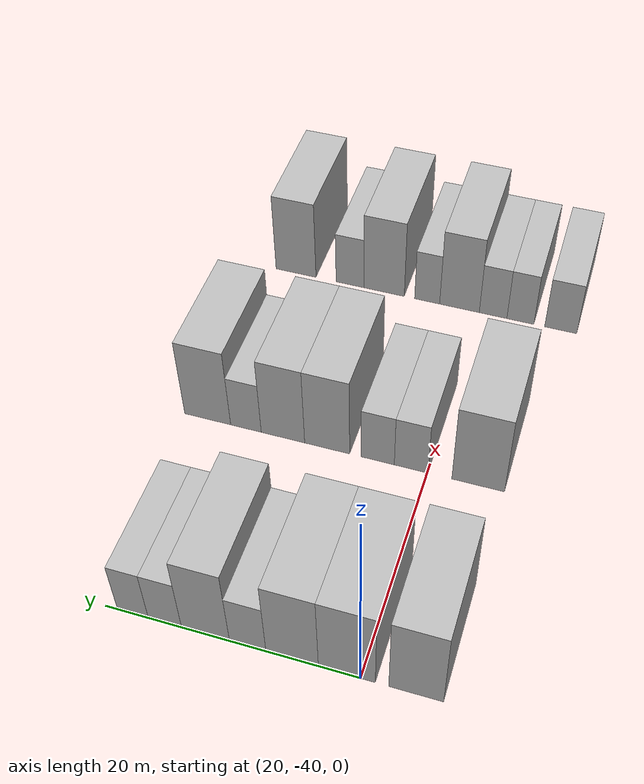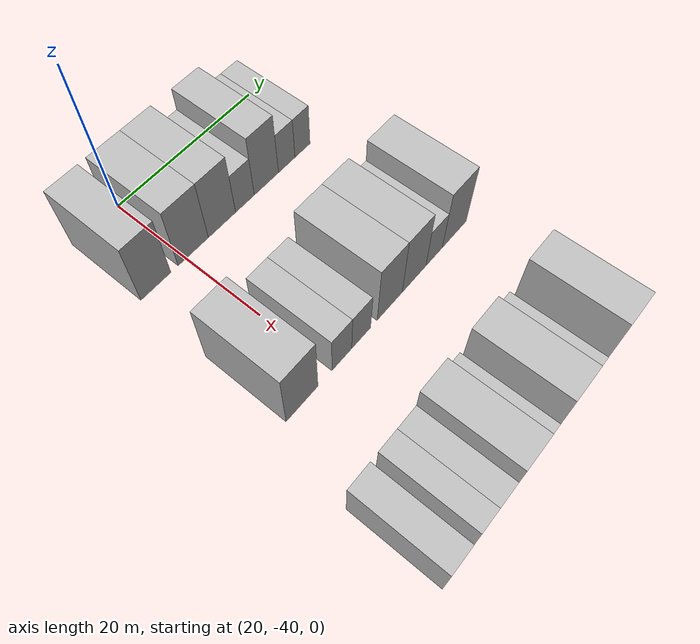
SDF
<sdf version="1.6">
 <world name="default">
  <model name="building_45">
   <static>1</static>
   <pose>25.0000 -44.1306 0 0.000000 0.000000 0.000000</pose>
   <link name="link">
    <pose>0 0 4.50 0 0 0</pose>
    <collision name="collision"><geometry><box><size>10.0000 4.0522 9.0000</size></box></geometry></collision>
    <visual name="visual">
     <cast_shadows>0</cast_shadows>
     <geometry><box><size>10.0000 4.0522 9.0000</size></box></geometry>
     <material>
      <script>
       <uri>model://HANNAS_wall/materials/scripts</uri>
       <uri>model://HANNAS_wall/materials/textures</uri>
       <name>vrc/HANNAS_wall</name>
      </script>
     </material>
    </visual>
   </link>
  </model>
  <model name="building_46">
   <static>1</static>
   <pose>25.0000 -38.9556 0 0.000000 0.000000 0.000000</pose>
   <link name="link">
    <pose>0 0 4.50 0 0 0</pose>
    <collision name="collision"><geometry><box><size>10.0000 4.2977 9.0000</size></box></geometry></collision>
    <visual name="visual">
     <cast_shadows>0</cast_shadows>
     <geometry><box><size>10.0000 4.2977 9.0000</size></box></geometry>
     <material>
      <script>
       <uri>model://HANNAS_wall/materials/scripts</uri>
       <uri>model://HANNAS_wall/materials/textures</uri>
       <name>vrc/HANNAS_wall</name>
      </script>
     </material>
    </visual>
   </link>
  </model>
  <model name="building_47">
   <static>1</static>
   <pose>25.0000 -34.7910 0 0.000000 0.000000 0.000000</pose>
   <link name="link">
    <pose>0 0 4.50 0 0 0</pose>
    <collision name="collision"><geometry><box><size>10.0000 4.0316 9.0000</size></box></geometry></collision>
    <visual name="visual">
     <cast_shadows>0</cast_shadows>
     <geometry><box><size>10.0000 4.0316 9.0000</size></box></geometry>
     <material>
      <script>
       <uri>model://HANNAS_wall/materials/scripts</uri>
       <uri>model://HANNAS_wall/materials/textures</uri>
       <name>vrc/HANNAS_wall</name>
      </script>
     </material>
    </visual>
   </link>
  </model>
  <model name="building_48">
   <static>1</static>
   <pose>25.0000 -31.3547 0 0.000000 0.000000 0.000000</pose>
   <link name="link">
    <pose>0 0 3.00 0 0 0</pose>
    <collision name="collision"><geometry><box><size>10.0000 2.8410 6.0000</size></box></geometry></collision>
    <visual name="visual">
     <cast_shadows>0</cast_shadows>
     <geometry><box><size>10.0000 2.8410 6.0000</size></box></geometry>
     <material>
      <script>
       <uri>model://HANNAS_wall/materials/scripts</uri>
       <uri>model://HANNAS_wall/materials/textures</uri>
       <name>vrc/HANNAS_wall</name>
      </script>
     </material>
    </visual>
   </link>
  </model>
  <model name="building_49">
   <static>1</static>
   <pose>25.0000 -28.0334 0 0.000000 0.000000 0.000000</pose>
   <link name="link">
    <pose>0 0 4.50 0 0 0</pose>
    <collision name="collision"><geometry><box><size>10.0000 3.8015 9.0000</size></box></geometry></collision>
    <visual name="visual">
     <cast_shadows>0</cast_shadows>
     <geometry><box><size>10.0000 3.8015 9.0000</size></box></geometry>
     <material>
      <script>
       <uri>model://HANNAS_wall/materials/scripts</uri>
       <uri>model://HANNAS_wall/materials/textures</uri>
       <name>vrc/HANNAS_wall</name>
      </script>
     </material>
    </visual>
   </link>
  </model>
  <model name="building_50">
   <static>1</static>
   <pose>25.0000 -24.7990 0 0.000000 0.000000 0.000000</pose>
   <link name="link">
    <pose>0 0 3.00 0 0 0</pose>
    <collision name="collision"><geometry><box><size>10.0000 2.6674 6.0000</size></box></geometry></collision>
    <visual name="visual">
     <cast_shadows>0</cast_shadows>
     <geometry><box><size>10.0000 2.6674 6.0000</size></box></geometry>
     <material>
      <script>
       <uri>model://HANNAS_wall/materials/scripts</uri>
       <uri>model://HANNAS_wall/materials/textures</uri>
       <name>vrc/HANNAS_wall</name>
      </script>
     </material>
    </visual>
   </link>
  </model>
  <model name="building_51">
   <static>1</static>
   <pose>25.0000 -22.2155 0 0.000000 0.000000 0.000000</pose>
   <link name="link">
    <pose>0 0 3.00 0 0 0</pose>
    <collision name="collision"><geometry><box><size>10.0000 2.4995 6.0000</size></box></geometry></collision>
    <visual name="visual">
     <cast_shadows>0</cast_shadows>
     <geometry><box><size>10.0000 2.4995 6.0000</size></box></geometry>
     <material>
      <script>
       <uri>model://HANNAS_wall/materials/scripts</uri>
       <uri>model://HANNAS_wall/materials/textures</uri>
       <name>vrc/HANNAS_wall</name>
      </script>
     </material>
    </visual>
   </link>
  </model>
  <model name="building_166">
   <static>1</static>
   <pose>44.0000 -44.2271 0 0.000000 0.000000 0.000000</pose>
   <link name="link">
    <pose>0 0 4.50 0 0 0</pose>
    <collision name="collision"><geometry><box><size>10.0000 4.3986 9.0000</size></box></geometry></collision>
    <visual name="visual">
     <cast_shadows>0</cast_shadows>
     <geometry><box><size>10.0000 4.3986 9.0000</size></box></geometry>
     <material>
      <script>
       <uri>model://HANNAS_wall/materials/scripts</uri>
       <uri>model://HANNAS_wall/materials/textures</uri>
       <name>vrc/HANNAS_wall</name>
      </script>
     </material>
    </visual>
   </link>
  </model>
  <model name="building_167">
   <static>1</static>
   <pose>44.0000 -38.5871 0 0.000000 0.000000 0.000000</pose>
   <link name="link">
    <pose>0 0 3.00 0 0 0</pose>
    <collision name="collision"><geometry><box><size>10.0000 2.8814 6.0000</size></box></geometry></collision>
    <visual name="visual">
     <cast_shadows>0</cast_shadows>
     <geometry><box><size>10.0000 2.8814 6.0000</size></box></geometry>
     <material>
      <script>
       <uri>model://HANNAS_wall/materials/scripts</uri>
       <uri>model://HANNAS_wall/materials/textures</uri>
       <name>vrc/HANNAS_wall</name>
      </script>
     </material>
    </visual>
   </link>
  </model>
  <model name="building_168">
   <static>1</static>
   <pose>44.0000 -35.7199 0 0.000000 0.000000 0.000000</pose>
   <link name="link">
    <pose>0 0 3.00 0 0 0</pose>
    <collision name="collision"><geometry><box><size>10.0000 2.8529 6.0000</size></box></geometry></collision>
    <visual name="visual">
     <cast_shadows>0</cast_shadows>
     <geometry><box><size>10.0000 2.8529 6.0000</size></box></geometry>
     <material>
      <script>
       <uri>model://HANNAS_wall/materials/scripts</uri>
       <uri>model://HANNAS_wall/materials/textures</uri>
       <name>vrc/HANNAS_wall</name>
      </script>
     </material>
    </visual>
   </link>
  </model>
  <model name="building_169">
   <static>1</static>
   <pose>44.0000 -31.3206 0 0.000000 0.000000 0.000000</pose>
   <link name="link">
    <pose>0 0 4.50 0 0 0</pose>
    <collision name="collision"><geometry><box><size>10.0000 3.9457 9.0000</size></box></geometry></collision>
    <visual name="visual">
     <cast_shadows>0</cast_shadows>
     <geometry><box><size>10.0000 3.9457 9.0000</size></box></geometry>
     <material>
      <script>
       <uri>model://HANNAS_wall/materials/scripts</uri>
       <uri>model://HANNAS_wall/materials/textures</uri>
       <name>vrc/HANNAS_wall</name>
      </script>
     </material>
    </visual>
   </link>
  </model>
  <model name="building_170">
   <static>1</static>
   <pose>44.0000 -27.4151 0 0.000000 0.000000 0.000000</pose>
   <link name="link">
    <pose>0 0 4.50 0 0 0</pose>
    <collision name="collision"><geometry><box><size>10.0000 3.8653 9.0000</size></box></geometry></collision>
    <visual name="visual">
     <cast_shadows>0</cast_shadows>
     <geometry><box><size>10.0000 3.8653 9.0000</size></box></geometry>
     <material>
      <script>
       <uri>model://HANNAS_wall/materials/scripts</uri>
       <uri>model://HANNAS_wall/materials/textures</uri>
       <name>vrc/HANNAS_wall</name>
      </script>
     </material>
    </visual>
   </link>
  </model>
  <model name="building_171">
   <static>1</static>
   <pose>44.0000 -24.1025 0 0.000000 0.000000 0.000000</pose>
   <link name="link">
    <pose>0 0 3.00 0 0 0</pose>
    <collision name="collision"><geometry><box><size>10.0000 2.7599 6.0000</size></box></geometry></collision>
    <visual name="visual">
     <cast_shadows>0</cast_shadows>
     <geometry><box><size>10.0000 2.7599 6.0000</size></box></geometry>
     <material>
      <script>
       <uri>model://HANNAS_wall/materials/scripts</uri>
       <uri>model://HANNAS_wall/materials/textures</uri>
       <name>vrc/HANNAS_wall</name>
      </script>
     </material>
    </visual>
   </link>
  </model>
  <model name="building_172">
   <static>1</static>
   <pose>44.0000 -20.6267 0 0.000000 0.000000 0.000000</pose>
   <link name="link">
    <pose>0 0 4.50 0 0 0</pose>
    <collision name="collision"><geometry><box><size>10.0000 4.1917 9.0000</size></box></geometry></collision>
    <visual name="visual">
     <cast_shadows>0</cast_shadows>
     <geometry><box><size>10.0000 4.1917 9.0000</size></box></geometry>
     <material>
      <script>
       <uri>model://HANNAS_wall/materials/scripts</uri>
       <uri>model://HANNAS_wall/materials/textures</uri>
       <name>vrc/HANNAS_wall</name>
      </script>
     </material>
    </visual>
   </link>
  </model>
  <model name="building_285">
   <static>1</static>
   <pose>63.0000 -47.4978 0 0.000000 0.000000 0.000000</pose>
   <link name="link">
    <pose>0 0 3.00 0 0 0</pose>
    <collision name="collision"><geometry><box><size>10.0000 2.9467 6.0000</size></box></geometry></collision>
    <visual name="visual">
     <cast_shadows>0</cast_shadows>
     <geometry><box><size>10.0000 2.9467 6.0000</size></box></geometry>
     <material>
      <script>
       <uri>model://HANNAS_wall/materials/scripts</uri>
       <uri>model://HANNAS_wall/materials/textures</uri>
       <name>vrc/HANNAS_wall</name>
      </script>
     </material>
    </visual>
   </link>
  </model>
  <model name="building_286">
   <static>1</static>
   <pose>63.0000 -43.7680 0 0.000000 0.000000 0.000000</pose>
   <link name="link">
    <pose>0 0 3.00 0 0 0</pose>
    <collision name="collision"><geometry><box><size>10.0000 2.5129 6.0000</size></box></geometry></collision>
    <visual name="visual">
     <cast_shadows>0</cast_shadows>
     <geometry><box><size>10.0000 2.5129 6.0000</size></box></geometry>
     <material>
      <script>
       <uri>model://HANNAS_wall/materials/scripts</uri>
       <uri>model://HANNAS_wall/materials/textures</uri>
       <name>vrc/HANNAS_wall</name>
      </script>
     </material>
    </visual>
   </link>
  </model>
  <model name="building_287">
   <static>1</static>
   <pose>63.0000 -41.2114 0 0.000000 0.000000 0.000000</pose>
   <link name="link">
    <pose>0 0 3.00 0 0 0</pose>
    <collision name="collision"><geometry><box><size>10.0000 2.6003 6.0000</size></box></geometry></collision>
    <visual name="visual">
     <cast_shadows>0</cast_shadows>
     <geometry><box><size>10.0000 2.6003 6.0000</size></box></geometry>
     <material>
      <script>
       <uri>model://HANNAS_wall/materials/scripts</uri>
       <uri>model://HANNAS_wall/materials/textures</uri>
       <name>vrc/HANNAS_wall</name>
      </script>
     </material>
    </visual>
   </link>
  </model>
  <model name="building_288">
   <static>1</static>
   <pose>63.0000 -38.0283 0 0.000000 0.000000 0.000000</pose>
   <link name="link">
    <pose>0 0 4.50 0 0 0</pose>
    <collision name="collision"><geometry><box><size>10.0000 3.7659 9.0000</size></box></geometry></collision>
    <visual name="visual">
     <cast_shadows>0</cast_shadows>
     <geometry><box><size>10.0000 3.7659 9.0000</size></box></geometry>
     <material>
      <script>
       <uri>model://HANNAS_wall/materials/scripts</uri>
       <uri>model://HANNAS_wall/materials/textures</uri>
       <name>vrc/HANNAS_wall</name>
      </script>
     </material>
    </visual>
   </link>
  </model>
  <model name="building_289">
   <static>1</static>
   <pose>63.0000 -34.9451 0 0.000000 0.000000 0.000000</pose>
   <link name="link">
    <pose>0 0 3.00 0 0 0</pose>
    <collision name="collision"><geometry><box><size>10.0000 2.4006 6.0000</size></box></geometry></collision>
    <visual name="visual">
     <cast_shadows>0</cast_shadows>
     <geometry><box><size>10.0000 2.4006 6.0000</size></box></geometry>
     <material>
      <script>
       <uri>model://HANNAS_wall/materials/scripts</uri>
       <uri>model://HANNAS_wall/materials/textures</uri>
       <name>vrc/HANNAS_wall</name>
      </script>
     </material>
    </visual>
   </link>
  </model>
  <model name="building_290">
   <static>1</static>
   <pose>63.0000 -30.7751 0 0.000000 0.000000 0.000000</pose>
   <link name="link">
    <pose>0 0 4.50 0 0 0</pose>
    <collision name="collision"><geometry><box><size>10.0000 3.9394 9.0000</size></box></geometry></collision>
    <visual name="visual">
     <cast_shadows>0</cast_shadows>
     <geometry><box><size>10.0000 3.9394 9.0000</size></box></geometry>
     <material>
      <script>
       <uri>model://HANNAS_wall/materials/scripts</uri>
       <uri>model://HANNAS_wall/materials/textures</uri>
       <name>vrc/HANNAS_wall</name>
      </script>
     </material>
    </visual>
   </link>
  </model>
  <model name="building_291">
   <static>1</static>
   <pose>63.0000 -27.4370 0 0.000000 0.000000 0.000000</pose>
   <link name="link">
    <pose>0 0 3.00 0 0 0</pose>
    <collision name="collision"><geometry><box><size>10.0000 2.7369 6.0000</size></box></geometry></collision>
    <visual name="visual">
     <cast_shadows>0</cast_shadows>
     <geometry><box><size>10.0000 2.7369 6.0000</size></box></geometry>
     <material>
      <script>
       <uri>model://HANNAS_wall/materials/scripts</uri>
       <uri>model://HANNAS_wall/materials/textures</uri>
       <name>vrc/HANNAS_wall</name>
      </script>
     </material>
    </visual>
   </link>
  </model>
  <model name="building_292">
   <static>1</static>
   <pose>63.0000 -22.0675 0 0.000000 0.000000 0.000000</pose>
   <link name="link">
    <pose>0 0 4.50 0 0 0</pose>
    <collision name="collision"><geometry><box><size>10.0000 4.0021 9.0000</size></box></geometry></collision>
    <visual name="visual">
     <cast_shadows>0</cast_shadows>
     <geometry><box><size>10.0000 4.0021 9.0000</size></box></geometry>
     <material>
      <script>
       <uri>model://HANNAS_wall/materials/scripts</uri>
       <uri>model://HANNAS_wall/materials/textures</uri>
       <name>vrc/HANNAS_wall</name>
      </script>
     </material>
    </visual>
   </link>
  </model>
 </world>
</sdf>
